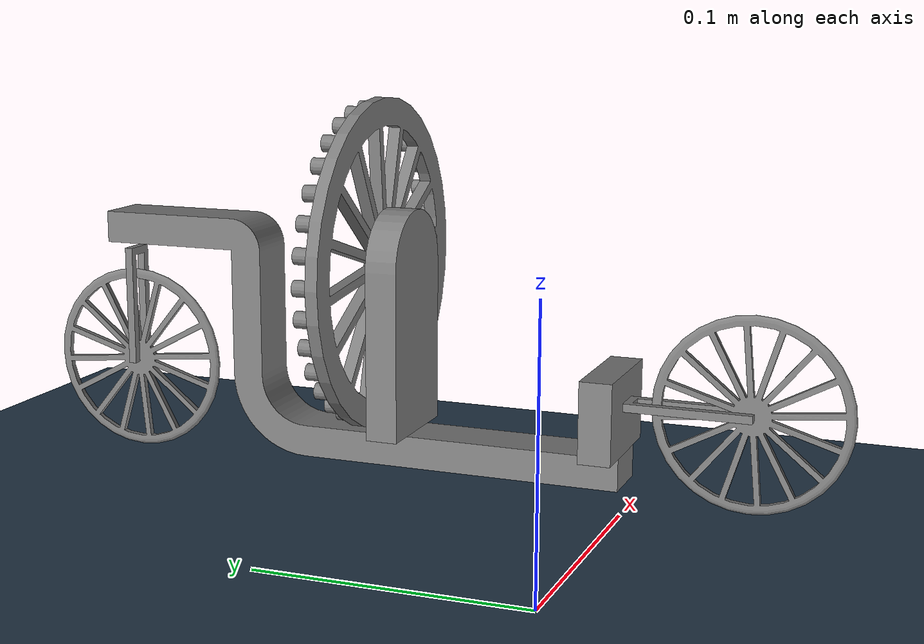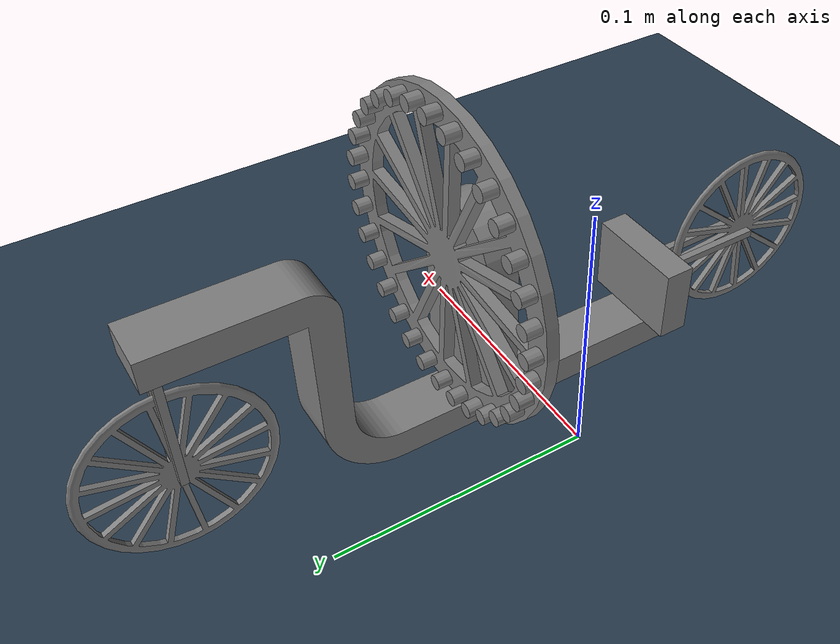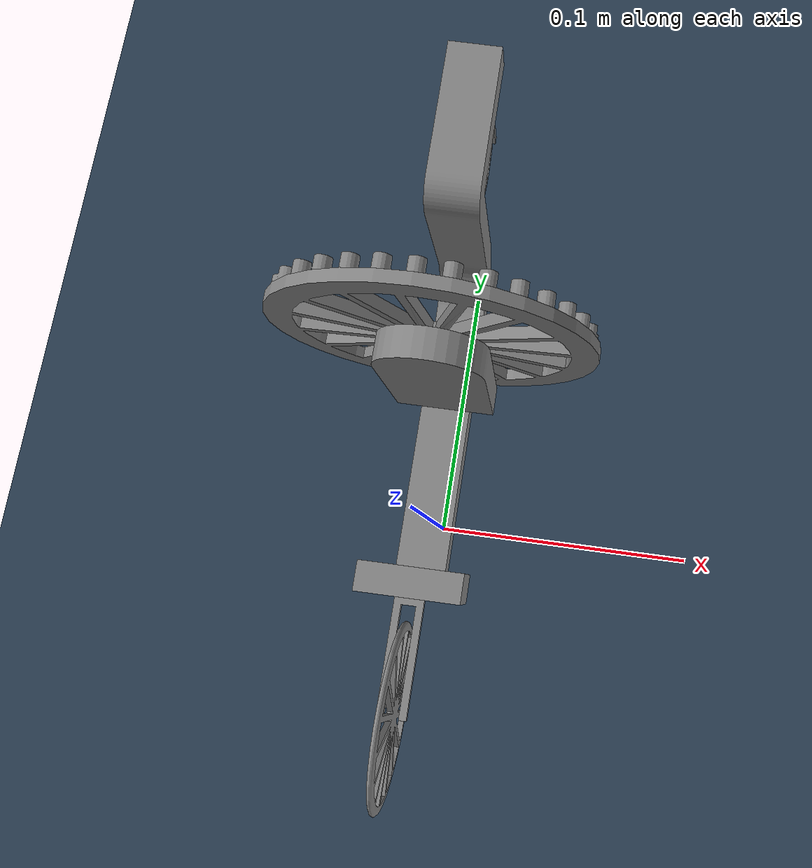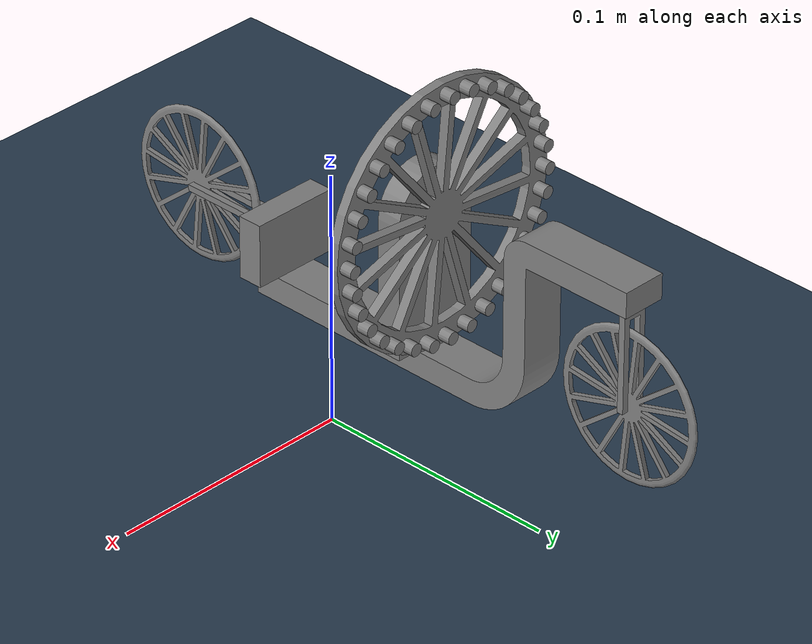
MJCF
<mujoco>
    <visual>
        <headlight ambient="0.4 0.4 0.4" diffuse="0.6 0.6 0.6" specular="0.1 0.1 0.1"/>
    </visual>

    <asset><mesh name='chassis' file='meshes/body.stl' scale = '0.5 1 1'/></asset>
    <asset><mesh name='front_wheel' file='meshes/frontwheel.stl'/></asset>
    <asset><mesh name='front_wheel_support' file='meshes/frontwheelsupport.stl'/></asset>
    <asset><mesh name='back_wheel' file='meshes/backwheel.stl'/></asset>
    <asset><mesh name='back_wheel_support' file='meshes/backwheelsupport.stl'/></asset>
    <asset><mesh name='reaction_wheel' file='meshes/reactionwheel.stl'/></asset>
    <asset><mesh name='reaction_wheel_support' file='meshes/reactionwheelsupport.stl'/></asset>
    <asset><mesh name='weights' file='meshes/weights.stl' scale = '1 2 1'/></asset>
    <asset><mesh name='back' file='meshes/back.stl'/></asset>
    <asset>
        <texture type="skybox" builtin="gradient" rgb1="0.3 0.5 0.7" rgb2="0 0 0" width="512" height="512"/>
        <texture name="texplane" type="2d" builtin="checker" rgb1="0.2 0.3 0.4" rgb2="0.1 0.15 0.2"
             width="512" height="512" mark="cross" markrgb="0.8 0.8 0.8"/>
        <material name="matplane" reflectance="0.2" texture="texplane" texrepeat="1 1" texuniform="true"/>
    </asset>

    <worldbody>
        <light directional="true" diffuse="0.8 0.8 0.8" specular="0.2 0.2 0.2" pos="0 0 5" dir="0 -1 -1"/>
        <geom name = 'floor' type = 'plane'  size = '100 100 0.1' material = 'matplane'/>
        <body name='chassis' pos = '0 0 0.05'>
            <freejoint name="root"/>
            <camera name="bike_cam" mode="trackcom" pos="0.3 -0.5 0.15" euler="75 30 0"/>
            <site name="imu_site" pos="0 0 0" size="0.01" rgba = "0 0 0 0"/>

            <geom type='mesh' mesh='chassis'/>

            <body name='back' pos='0 0 0'>
                <geom type='mesh' mesh='back'/>
            </body>

            <body name='reaction_wheel_support' pos='0 0 0'>
                <geom type='mesh' mesh='reaction_wheel_support'/>
                <body name='reaction_wheel' pos='0 0 0'>
                    <joint name='reaction_wheel_joint' type='hinge' axis='0 1 0' pos = '0 0 0.0575' damping='0.01'/>
                    <geom type='mesh' mesh='reaction_wheel' />
                    <site name="rxn_site" pos="0 0 0" size="0.01" rgba = "0 0 0 0"/>
                    <body name='weights' pos='0 -0.055 0'>
                        <geom type='mesh' mesh='weights' density='6000'/>
                    </body>

                </body>
            </body>

            <body name='front_wheel_support' pos='0 0 0'>
                <geom type='mesh' mesh='front_wheel_support'/>
                <joint name='steering' type='hinge' axis='0 0 1' pos = '0 0.140003 0.0201597' damping = '0.01'/>
                <body name='front_wheel' pos='0 0 0'>
                    <joint name='front_wheel_joint' type='hinge' axis='1 0 0' pos = '0 0.140003 0.0201597' damping = '0.01'/>
                    <geom type='mesh' mesh='front_wheel'/>
                </body>
            </body>

            <body name='back_wheel_support' pos='0 0 0'>
                <geom type='mesh' mesh='back_wheel_support'/>
                <body name='back_wheel' pos='0 0 0'>
                    <joint name='back_wheel_joint' type='hinge' axis='1 0 0' pos = '0 -0.065 0.02' damping = '0.01'/>
                    <geom type='mesh' mesh='back_wheel'/>
                </body>
            </body>
        </body>

    </worldbody>

    <actuator>
        <motor name='reaction_motor' joint='reaction_wheel_joint' ctrlrange='-10 10'/>
        <motor name='front_motor' joint='front_wheel_joint' ctrlrange='-10 10'/>
        <motor name='steering_motor' joint='steering' ctrlrange='-1 1'/>
        <motor name='back_motor' joint='back_wheel_joint' ctrlrange='-10 10'/>
    </actuator>

    <sensor>
        <framequat name="chassis_orientation" objtype="site" objname="imu_site"/>
        <frameangvel name="chassis_gyro" objtype="site" objname="imu_site"/>
        <frameangvel name="rxn_gyro" objtype="site" objname="rxn_site"/>
    </sensor>

    <contact>
        <exclude body1='reaction_wheel' body2='chassis'/>
        <exclude body1='reaction_wheel' body2='back'/>
        <exclude body1='reaction_wheel' body2='reaction_wheel_support'/>
        <exclude body1='front_wheel' body2='chassis'/>
        <exclude body1='front_wheel' body2='back'/>
        <exclude body1='front_wheel' body2='front_wheel_support'/>
        <exclude body1='front_wheel' body2='reaction_wheel_support'/>
        <exclude body1='front_wheel_support' body2='chassis'/>
        <exclude body1='front_wheel_support' body2='back'/>
        <exclude body1='front_wheel_support' body2='reaction_wheel_support'/>
        <exclude body1='back_wheel' body2='chassis'/>
        <exclude body1='back_wheel' body2='back'/>
        <exclude body1='back_wheel' body2='back_wheel_support'/>
        <exclude body1='back_wheel' body2='reaction_wheel_support'/>
    </contact>
</mujoco>
